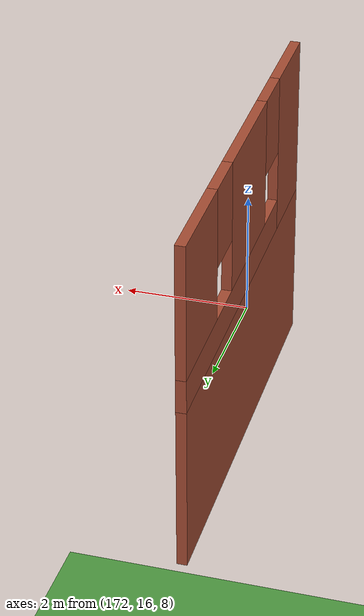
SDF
<sdf version="1.7">
 <world name="default">
  <model name="ground_plane">
   <static>1</static>
   <link name="link">
    <collision name="collision">
     <geometry><plane><normal>0 0 1</normal><size>100 100</size></plane></geometry>
     <surface>
      <contact><collide_bitmask>65535</collide_bitmask></contact>
      <friction><ode><mu>100</mu><mu2>50</mu2></ode></friction>
     </surface>
    </collision>
    <visual name="grass">
     <pose>0 0 -0.1 0 -0 0</pose>
     <cast_shadows>0</cast_shadows>
     <geometry><plane><normal>0 0 1</normal><size>1000 1000</size></plane></geometry>
     <material>
      <script><uri>file://media/materials/scripts/gazebo.material</uri><name>Gazebo/Grass</name></script>
     </material>
    </visual>
   </link>
  </model>
  <model name="asphalt_plane">
   <static>1</static>
   <link name="link">
    <collision name="collision"><geometry><box><size>20 20 0.1</size></box></geometry></collision>
    <visual name="visual">
     <cast_shadows>0</cast_shadows>
     <geometry><box><size>20 20 0.1</size></box></geometry>
     <material>
      <script>
       <uri>model://asphalt_plane/materials/scripts</uri>
       <uri>model://asphalt_plane/materials/textures</uri>
       <name>vrc/asphalt</name>
      </script>
     </material>
    </visual>
   </link>
   <pose>26.7323 45.4974 0 0 -0 0</pose>
  </model>
  <model name="my_building_1_clone">
   <link name="Wall_83">
    <pose>-4.12557 -6.05 7.5 0 -0 0</pose>
    <visual name="Wall_83_Visual">
     <pose>0 0 1.25 0 -0 0</pose>
     <geometry><box><size>6.5 0.15 2.5</size></box></geometry>
     <material>
      <script><uri>file://media/materials/scripts/gazebo.material</uri><name>Gazebo/Bricks</name></script>
      <ambient>1 1 1 1</ambient>
      <shader type="pixel"/>
     </material>
     <meta><layer>3</layer></meta>
    </visual>
    <collision name="Wall_83_Collision">
     <pose>0 0 1.25 0 -0 0</pose>
     <geometry><box><size>6.5 0.15 2.5</size></box></geometry>
     <surface>
      <friction>
       <ode><mu>1</mu><mu2>1</mu2><fdir1>0 0 0</fdir1><slip1>0</slip1><slip2>0</slip2></ode>
       <torsional>
        <coefficient>1</coefficient>
        <patch_radius>0</patch_radius>
        <surface_radius>0</surface_radius>
        <use_patch_radius>1</use_patch_radius>
        <ode><slip>0</slip></ode>
       </torsional>
      </friction>
      <bounce><restitution_coefficient>0</restitution_coefficient><threshold>1e+06</threshold></bounce>
      <contact>
       <collide_without_contact>0</collide_without_contact>
       <collide_without_contact_bitmask>1</collide_without_contact_bitmask>
       <collide_bitmask>1</collide_bitmask>
       <ode>
        <soft_cfm>0</soft_cfm>
        <soft_erp>0.2</soft_erp>
        <kp>1e+13</kp>
        <kd>1</kd>
        <max_vel>0.01</max_vel>
        <min_depth>0</min_depth>
       </ode>
       <bullet>
        <split_impulse>1</split_impulse>
        <split_impulse_penetration_threshold>-0.01</split_impulse_penetration_threshold>
        <soft_cfm>0</soft_cfm>
        <soft_erp>0.2</soft_erp>
        <kp>1e+13</kp>
        <kd>1</kd>
       </bullet>
      </contact>
     </surface>
    </collision>
   </link>
   <link name="Wall_87">
    <pose>-4.12557 -6.05 10 0 -0 0</pose>
    <visual name="Wall_87_Visual_4">
     <pose>-1.49181 0 1.9 0 -0 0</pose>
     <geometry><box><size>0.8 0.15 1.2</size></box></geometry>
     <material>
      <script><uri>file://media/materials/scripts/gazebo.material</uri><name>Gazebo/Bricks</name></script>
      <ambient>1 1 1 1</ambient>
      <shader type="pixel"/>
     </material>
     <meta><layer>4</layer></meta>
    </visual>
    <visual name="Wall_87_Visual_3">
     <pose>2.46231 0 1.5 0 -0 0</pose>
     <geometry><box><size>1.57539 0.15 2</size></box></geometry>
     <material>
      <script><uri>file://media/materials/scripts/gazebo.material</uri><name>Gazebo/Bricks</name></script>
      <ambient>1 1 1 1</ambient>
      <shader type="pixel"/>
     </material>
     <meta><layer>4</layer></meta>
    </visual>
    <visual name="Wall_87_Visual_0">
     <pose>-2.5709 0 1.25 0 -0 0</pose>
     <geometry><box><size>1.35819 0.15 2.5</size></box></geometry>
     <material>
      <script><uri>file://media/materials/scripts/gazebo.material</uri><name>Gazebo/Bricks</name></script>
      <ambient>1 1 1 1</ambient>
      <shader type="pixel"/>
     </material>
     <meta><layer>4</layer></meta>
    </visual>
    <visual name="Wall_87_Visual_1">
     <pose>0.679097 0 0.25 0 -0 0</pose>
     <geometry><box><size>5.14181 0.15 0.5</size></box></geometry>
     <material>
      <script><uri>file://media/materials/scripts/gazebo.material</uri><name>Gazebo/Bricks</name></script>
      <ambient>1 1 1 1</ambient>
      <shader type="pixel"/>
     </material>
     <meta><layer>4</layer></meta>
    </visual>
    <visual name="Wall_87_Visual_2">
     <pose>-0.108597 0 1.5 0 -0 0</pose>
     <geometry><box><size>1.96642 0.15 2</size></box></geometry>
     <material>
      <script><uri>file://media/materials/scripts/gazebo.material</uri><name>Gazebo/Bricks</name></script>
      <ambient>1 1 1 1</ambient>
      <shader type="pixel"/>
     </material>
     <meta><layer>4</layer></meta>
    </visual>
    <visual name="Wall_87_Visual_5">
     <pose>1.27461 0 1.9 0 -0 0</pose>
     <geometry><box><size>0.8 0.15 1.2</size></box></geometry>
     <material>
      <script><uri>file://media/materials/scripts/gazebo.material</uri><name>Gazebo/Bricks</name></script>
      <ambient>1 1 1 1</ambient>
      <shader type="pixel"/>
     </material>
     <meta><layer>4</layer></meta>
    </visual>
    <collision name="Wall_87_Collision_2">
     <pose>-0.108597 0 1.5 0 -0 0</pose>
     <geometry><box><size>1.96642 0.15 2</size></box></geometry>
     <surface>
      <friction>
       <ode><mu>1</mu><mu2>1</mu2><fdir1>0 0 0</fdir1><slip1>0</slip1><slip2>0</slip2></ode>
       <torsional>
        <coefficient>1</coefficient>
        <patch_radius>0</patch_radius>
        <surface_radius>0</surface_radius>
        <use_patch_radius>1</use_patch_radius>
        <ode><slip>0</slip></ode>
       </torsional>
      </friction>
      <bounce><restitution_coefficient>0</restitution_coefficient><threshold>1e+06</threshold></bounce>
      <contact>
       <collide_without_contact>0</collide_without_contact>
       <collide_without_contact_bitmask>1</collide_without_contact_bitmask>
       <collide_bitmask>1</collide_bitmask>
       <ode>
        <soft_cfm>0</soft_cfm>
        <soft_erp>0.2</soft_erp>
        <kp>1e+13</kp>
        <kd>1</kd>
        <max_vel>0.01</max_vel>
        <min_depth>0</min_depth>
       </ode>
       <bullet>
        <split_impulse>1</split_impulse>
        <split_impulse_penetration_threshold>-0.01</split_impulse_penetration_threshold>
        <soft_cfm>0</soft_cfm>
        <soft_erp>0.2</soft_erp>
        <kp>1e+13</kp>
        <kd>1</kd>
       </bullet>
      </contact>
     </surface>
    </collision>
    <collision name="Wall_87_Collision_3">
     <pose>2.46231 0 1.5 0 -0 0</pose>
     <geometry><box><size>1.57539 0.15 2</size></box></geometry>
     <surface>
      <friction>
       <ode><mu>1</mu><mu2>1</mu2><fdir1>0 0 0</fdir1><slip1>0</slip1><slip2>0</slip2></ode>
       <torsional>
        <coefficient>1</coefficient>
        <patch_radius>0</patch_radius>
        <surface_radius>0</surface_radius>
        <use_patch_radius>1</use_patch_radius>
        <ode><slip>0</slip></ode>
       </torsional>
      </friction>
      <bounce><restitution_coefficient>0</restitution_coefficient><threshold>1e+06</threshold></bounce>
      <contact>
       <collide_without_contact>0</collide_without_contact>
       <collide_without_contact_bitmask>1</collide_without_contact_bitmask>
       <collide_bitmask>1</collide_bitmask>
       <ode>
        <soft_cfm>0</soft_cfm>
        <soft_erp>0.2</soft_erp>
        <kp>1e+13</kp>
        <kd>1</kd>
        <max_vel>0.01</max_vel>
        <min_depth>0</min_depth>
       </ode>
       <bullet>
        <split_impulse>1</split_impulse>
        <split_impulse_penetration_threshold>-0.01</split_impulse_penetration_threshold>
        <soft_cfm>0</soft_cfm>
        <soft_erp>0.2</soft_erp>
        <kp>1e+13</kp>
        <kd>1</kd>
       </bullet>
      </contact>
     </surface>
    </collision>
    <collision name="Wall_87_Collision_0">
     <pose>-2.5709 0 1.25 0 -0 0</pose>
     <geometry><box><size>1.35819 0.15 2.5</size></box></geometry>
     <surface>
      <friction>
       <ode><mu>1</mu><mu2>1</mu2><fdir1>0 0 0</fdir1><slip1>0</slip1><slip2>0</slip2></ode>
       <torsional>
        <coefficient>1</coefficient>
        <patch_radius>0</patch_radius>
        <surface_radius>0</surface_radius>
        <use_patch_radius>1</use_patch_radius>
        <ode><slip>0</slip></ode>
       </torsional>
      </friction>
      <bounce><restitution_coefficient>0</restitution_coefficient><threshold>1e+06</threshold></bounce>
      <contact>
       <collide_without_contact>0</collide_without_contact>
       <collide_without_contact_bitmask>1</collide_without_contact_bitmask>
       <collide_bitmask>1</collide_bitmask>
       <ode>
        <soft_cfm>0</soft_cfm>
        <soft_erp>0.2</soft_erp>
        <kp>1e+13</kp>
        <kd>1</kd>
        <max_vel>0.01</max_vel>
        <min_depth>0</min_depth>
       </ode>
       <bullet>
        <split_impulse>1</split_impulse>
        <split_impulse_penetration_threshold>-0.01</split_impulse_penetration_threshold>
        <soft_cfm>0</soft_cfm>
        <soft_erp>0.2</soft_erp>
        <kp>1e+13</kp>
        <kd>1</kd>
       </bullet>
      </contact>
     </surface>
    </collision>
    <collision name="Wall_87_Collision_5">
     <pose>1.27461 0 1.9 0 -0 0</pose>
     <geometry><box><size>0.8 0.15 1.2</size></box></geometry>
     <surface>
      <friction>
       <ode><mu>1</mu><mu2>1</mu2><fdir1>0 0 0</fdir1><slip1>0</slip1><slip2>0</slip2></ode>
       <torsional>
        <coefficient>1</coefficient>
        <patch_radius>0</patch_radius>
        <surface_radius>0</surface_radius>
        <use_patch_radius>1</use_patch_radius>
        <ode><slip>0</slip></ode>
       </torsional>
      </friction>
      <bounce><restitution_coefficient>0</restitution_coefficient><threshold>1e+06</threshold></bounce>
      <contact>
       <collide_without_contact>0</collide_without_contact>
       <collide_without_contact_bitmask>1</collide_without_contact_bitmask>
       <collide_bitmask>1</collide_bitmask>
       <ode>
        <soft_cfm>0</soft_cfm>
        <soft_erp>0.2</soft_erp>
        <kp>1e+13</kp>
        <kd>1</kd>
        <max_vel>0.01</max_vel>
        <min_depth>0</min_depth>
       </ode>
       <bullet>
        <split_impulse>1</split_impulse>
        <split_impulse_penetration_threshold>-0.01</split_impulse_penetration_threshold>
        <soft_cfm>0</soft_cfm>
        <soft_erp>0.2</soft_erp>
        <kp>1e+13</kp>
        <kd>1</kd>
       </bullet>
      </contact>
     </surface>
    </collision>
    <collision name="Wall_87_Collision_4">
     <pose>-1.49181 0 1.9 0 -0 0</pose>
     <geometry><box><size>0.8 0.15 1.2</size></box></geometry>
     <surface>
      <friction>
       <ode><mu>1</mu><mu2>1</mu2><fdir1>0 0 0</fdir1><slip1>0</slip1><slip2>0</slip2></ode>
       <torsional>
        <coefficient>1</coefficient>
        <patch_radius>0</patch_radius>
        <surface_radius>0</surface_radius>
        <use_patch_radius>1</use_patch_radius>
        <ode><slip>0</slip></ode>
       </torsional>
      </friction>
      <bounce><restitution_coefficient>0</restitution_coefficient><threshold>1e+06</threshold></bounce>
      <contact>
       <collide_without_contact>0</collide_without_contact>
       <collide_without_contact_bitmask>1</collide_without_contact_bitmask>
       <collide_bitmask>1</collide_bitmask>
       <ode>
        <soft_cfm>0</soft_cfm>
        <soft_erp>0.2</soft_erp>
        <kp>1e+13</kp>
        <kd>1</kd>
        <max_vel>0.01</max_vel>
        <min_depth>0</min_depth>
       </ode>
       <bullet>
        <split_impulse>1</split_impulse>
        <split_impulse_penetration_threshold>-0.01</split_impulse_penetration_threshold>
        <soft_cfm>0</soft_cfm>
        <soft_erp>0.2</soft_erp>
        <kp>1e+13</kp>
        <kd>1</kd>
       </bullet>
      </contact>
     </surface>
    </collision>
    <collision name="Wall_87_Collision_1">
     <pose>0.679097 0 0.25 0 -0 0</pose>
     <geometry><box><size>5.14181 0.15 0.5</size></box></geometry>
     <surface>
      <friction>
       <ode><mu>1</mu><mu2>1</mu2><fdir1>0 0 0</fdir1><slip1>0</slip1><slip2>0</slip2></ode>
       <torsional>
        <coefficient>1</coefficient>
        <patch_radius>0</patch_radius>
        <surface_radius>0</surface_radius>
        <use_patch_radius>1</use_patch_radius>
        <ode><slip>0</slip></ode>
       </torsional>
      </friction>
      <bounce><restitution_coefficient>0</restitution_coefficient><threshold>1e+06</threshold></bounce>
      <contact>
       <collide_without_contact>0</collide_without_contact>
       <collide_without_contact_bitmask>1</collide_without_contact_bitmask>
       <collide_bitmask>1</collide_bitmask>
       <ode>
        <soft_cfm>0</soft_cfm>
        <soft_erp>0.2</soft_erp>
        <kp>1e+13</kp>
        <kd>1</kd>
        <max_vel>0.01</max_vel>
        <min_depth>0</min_depth>
       </ode>
       <bullet>
        <split_impulse>1</split_impulse>
        <split_impulse_penetration_threshold>-0.01</split_impulse_penetration_threshold>
        <soft_cfm>0</soft_cfm>
        <soft_erp>0.2</soft_erp>
        <kp>1e+13</kp>
        <kd>1</kd>
       </bullet>
      </contact>
     </surface>
    </collision>
   </link>
   <static>1</static>
   <pose>165.249 22.7467 0 0 -0 1.58902</pose>
  </model>
 </world>
</sdf>
